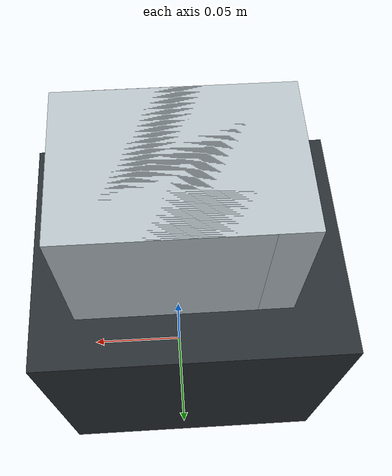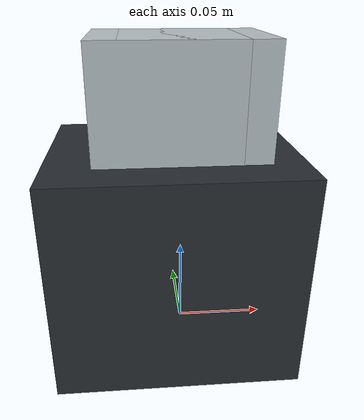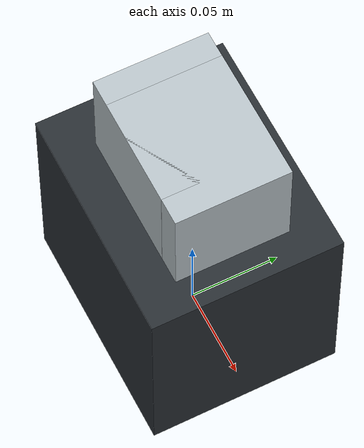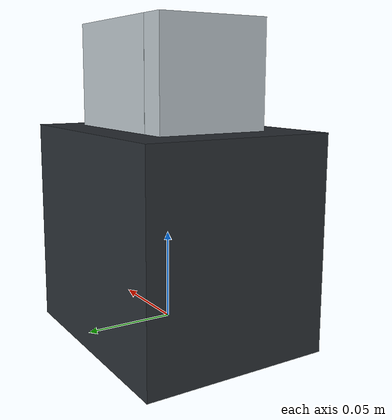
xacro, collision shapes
<?xml version="1.0"?>
<robot xmlns:xacro="http://www.ros.org/wiki/xacro" name="atom_gripper_standalone">
  <link name="world"/>
  <xacro:include filename="$(find atom_gripper_description)/urdf/atom_gripper.urdf.xacro"/>
  <xacro:atom_gripper parent="world" use_mimic="true">
    <origin xyz="0 0 0" rpy="0 0 0"/>
  </xacro:atom_gripper>
</robot>

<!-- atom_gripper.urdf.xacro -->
<robot xmlns:xacro="http://www.ros.org/wiki/xacro">
  <xacro:macro name="atom_box_inertial" params="mass x y z">
    <inertial>
      <mass value="${mass}"/>
      <inertia
        ixx="${mass * (y * y + z * z) / 12.0}" ixy="0" ixz="0"
        iyy="${mass * (x * x + z * z) / 12.0}" iyz="0"
        izz="${mass * (x * x + y * y) / 12.0}"/>
    </inertial>
  </xacro:macro>

  <xacro:macro name="atom_gripper" params="parent prefix:='' use_mimic:=true *origin">
    <link name="${prefix}gripper_mount"/>

    <joint name="${prefix}gripper_mount_joint" type="fixed">
      <parent link="${parent}"/>
      <child link="${prefix}gripper_mount"/>
      <xacro:insert_block name="origin"/>
    </joint>

    <link name="${prefix}gripper_base">
      <xacro:atom_box_inertial mass="0.48" x="0.120" y="0.105" z="0.110"/>
      <visual>
        <origin xyz="-0.043494 -0.022225 0.028836" rpy="1.5707963268 1.5707963268 0"/>
        <geometry>
          <mesh filename="package://atom_gripper_description/meshes/generated/base.stl" scale="0.001 0.001 0.001"/>
        </geometry>
        <material name="atom_body"><color rgba="0.16 0.18 0.20 1"/></material>
      </visual>
      <collision>
        <!-- Full inherited mesh AABB + 0.5 mm per side; CAD-only envelope. -->
        <origin xyz="-0.004999999 -0.000000002 0.051335998"/>
        <geometry><box size="0.131000004 0.106000000 0.118399998"/></geometry>
      </collision>
    </link>

    <joint name="${prefix}gripper_base_joint" type="fixed">
      <parent link="${prefix}gripper_mount"/>
      <child link="${prefix}gripper_base"/>
    </joint>

    <link name="${prefix}left_finger">
      <xacro:atom_box_inertial mass="0.05" x="0.008" y="0.030" z="0.075"/>
      <visual>
        <origin xyz="-0.043494 -0.022225 0.028836" rpy="1.5707963268 1.5707963268 0"/>
        <geometry>
          <mesh filename="package://atom_gripper_description/meshes/generated/left_finger.stl" scale="0.001 0.001 0.001"/>
        </geometry>
        <material name="atom_left_finger"><color rgba="0.72 0.76 0.78 1"/></material>
      </visual>
      <collision>
        <!-- Full inherited mesh AABB + 0.5 mm per side; CAD-only envelope. -->
        <origin xyz="0.005528131 0.000499999 0.115035999"/>
        <geometry><box size="0.073943745 0.062999999 0.106999996"/></geometry>
      </collision>
    </link>
    <joint name="${prefix}left_finger_joint" type="prismatic">
      <parent link="${prefix}gripper_base"/>
      <child link="${prefix}left_finger"/>
      <axis xyz="1 0 0"/>
      <limit lower="-0.015" upper="0.005" effort="20" velocity="0.03"/>
      <dynamics damping="0.5" friction="0.05"/>
    </joint>

    <link name="${prefix}right_finger">
      <xacro:atom_box_inertial mass="0.05" x="0.008" y="0.030" z="0.075"/>
      <visual>
        <origin xyz="-0.043494 -0.022225 0.028836" rpy="1.5707963268 1.5707963268 0"/>
        <geometry>
          <mesh filename="package://atom_gripper_description/meshes/generated/right_finger.stl" scale="0.001 0.001 0.001"/>
        </geometry>
        <material name="atom_right_finger"><color rgba="0.72 0.76 0.78 1"/></material>
      </visual>
      <collision>
        <!-- Full inherited mesh AABB + 0.5 mm per side; CAD-only envelope. -->
        <origin xyz="-0.009208677 0.000450000 0.115035999"/>
        <geometry><box size="0.073943744 0.062999999 0.106999996"/></geometry>
      </collision>
    </link>
    <joint name="${prefix}right_finger_joint" type="prismatic">
      <parent link="${prefix}gripper_base"/>
      <child link="${prefix}right_finger"/>
      <axis xyz="-1 0 0"/>
      <limit lower="-0.015" upper="0.005" effort="20" velocity="0.03"/>
      <dynamics damping="0.5" friction="0.05"/>
      <xacro:if value="${use_mimic}">
        <mimic joint="${prefix}left_finger_joint" multiplier="1.0" offset="0"/>
      </xacro:if>
    </joint>

    <link name="${prefix}gripper_tcp"/>
    <joint name="${prefix}gripper_tcp_joint" type="fixed">
      <parent link="${prefix}gripper_base"/>
      <child link="${prefix}gripper_tcp"/>
      <origin xyz="-0.0018 0 0.170536"/>
    </joint>

    <!-- Reported Silicone 20A / cuvette mean friction, N=10 inclined-plane trials. -->
    <gazebo reference="${prefix}left_finger">
      <mu1>0.88</mu1>
      <mu2>0.88</mu2>
    </gazebo>
    <gazebo reference="${prefix}right_finger">
      <mu1>0.88</mu1>
      <mu2>0.88</mu2>
    </gazebo>
  </xacro:macro>
</robot>
